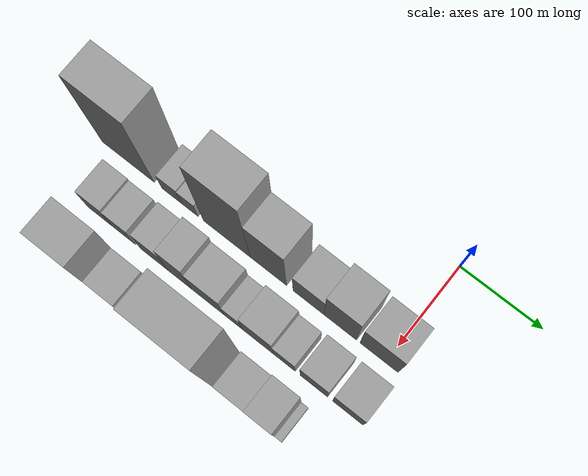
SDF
<sdf version="1.6">
 <world name="default">
  <model name="building_9">
   <static>1</static>
   <pose>100.0000 -323.2241 0 0.000000 0.000000 0.000000</pose>
   <link name="link">
    <pose>0 0 88.50 0 0 0</pose>
    <collision name="collision"><geometry><box><size>40.0000 67.9188 177.0000</size></box></geometry></collision>
    <visual name="visual">
     <cast_shadows>0</cast_shadows>
     <geometry><box><size>40.0000 67.9188 177.0000</size></box></geometry>
     <material>
      <script>
       <uri>model://grey_wall/materials/scripts</uri>
       <uri>model://grey_wall/materials/textures</uri>
       <name>vrc/grey_wall</name>
      </script>
     </material>
    </visual>
   </link>
  </model>
  <model name="building_10">
   <static>1</static>
   <pose>100.0000 -266.8234 0 0.000000 0.000000 0.000000</pose>
   <link name="link">
    <pose>0 0 22.50 0 0 0</pose>
    <collision name="collision"><geometry><box><size>40.0000 24.8826 45.0000</size></box></geometry></collision>
    <visual name="visual">
     <cast_shadows>0</cast_shadows>
     <geometry><box><size>40.0000 24.8826 45.0000</size></box></geometry>
     <material>
      <script>
       <uri>model://grey_wall/materials/scripts</uri>
       <uri>model://grey_wall/materials/textures</uri>
       <name>vrc/grey_wall</name>
      </script>
     </material>
    </visual>
   </link>
  </model>
  <model name="building_11">
   <static>1</static>
   <pose>100.0000 -243.5627 0 0.000000 0.000000 0.000000</pose>
   <link name="link">
    <pose>0 0 21.00 0 0 0</pose>
    <collision name="collision"><geometry><box><size>40.0000 21.6390 42.0000</size></box></geometry></collision>
    <visual name="visual">
     <cast_shadows>0</cast_shadows>
     <geometry><box><size>40.0000 21.6390 42.0000</size></box></geometry>
     <material>
      <script>
       <uri>model://grey_wall/materials/scripts</uri>
       <uri>model://grey_wall/materials/textures</uri>
       <name>vrc/grey_wall</name>
      </script>
     </material>
    </visual>
   </link>
  </model>
  <model name="building_12">
   <static>1</static>
   <pose>100.0000 -196.0559 0 0.000000 0.000000 0.000000</pose>
   <link name="link">
    <pose>0 0 93.00 0 0 0</pose>
    <collision name="collision"><geometry><box><size>40.0000 59.3746 186.0000</size></box></geometry></collision>
    <visual name="visual">
     <cast_shadows>0</cast_shadows>
     <geometry><box><size>40.0000 59.3746 186.0000</size></box></geometry>
     <material>
      <script>
       <uri>model://grey_wall/materials/scripts</uri>
       <uri>model://grey_wall/materials/textures</uri>
       <name>vrc/grey_wall</name>
      </script>
     </material>
    </visual>
   </link>
  </model>
  <model name="building_13">
   <static>1</static>
   <pose>100.0000 -143.6979 0 0.000000 0.000000 0.000000</pose>
   <link name="link">
    <pose>0 0 64.50 0 0 0</pose>
    <collision name="collision"><geometry><box><size>40.0000 45.3413 129.0000</size></box></geometry></collision>
    <visual name="visual">
     <cast_shadows>0</cast_shadows>
     <geometry><box><size>40.0000 45.3413 129.0000</size></box></geometry>
     <material>
      <script>
       <uri>model://grey_wall/materials/scripts</uri>
       <uri>model://grey_wall/materials/textures</uri>
       <name>vrc/grey_wall</name>
      </script>
     </material>
    </visual>
   </link>
  </model>
  <model name="building_14">
   <static>1</static>
   <pose>100.0000 -93.7879 0 0.000000 0.000000 0.000000</pose>
   <link name="link">
    <pose>0 0 34.50 0 0 0</pose>
    <collision name="collision"><geometry><box><size>40.0000 38.4788 69.0000</size></box></geometry></collision>
    <visual name="visual">
     <cast_shadows>0</cast_shadows>
     <geometry><box><size>40.0000 38.4788 69.0000</size></box></geometry>
     <material>
      <script>
       <uri>model://grey_wall/materials/scripts</uri>
       <uri>model://grey_wall/materials/textures</uri>
       <name>vrc/grey_wall</name>
      </script>
     </material>
    </visual>
   </link>
  </model>
  <model name="building_15">
   <static>1</static>
   <pose>100.0000 -54.8246 0 0.000000 0.000000 0.000000</pose>
   <link name="link">
    <pose>0 0 51.00 0 0 0</pose>
    <collision name="collision"><geometry><box><size>40.0000 39.4477 102.0000</size></box></geometry></collision>
    <visual name="visual">
     <cast_shadows>0</cast_shadows>
     <geometry><box><size>40.0000 39.4477 102.0000</size></box></geometry>
     <material>
      <script>
       <uri>model://grey_wall/materials/scripts</uri>
       <uri>model://grey_wall/materials/textures</uri>
       <name>vrc/grey_wall</name>
      </script>
     </material>
    </visual>
   </link>
  </model>
  <model name="building_16">
   <static>1</static>
   <pose>100.0000 -8.0166 0 0.000000 0.000000 0.000000</pose>
   <link name="link">
    <pose>0 0 43.50 0 0 0</pose>
    <collision name="collision"><geometry><box><size>40.0000 46.1682 87.0000</size></box></geometry></collision>
    <visual name="visual">
     <cast_shadows>0</cast_shadows>
     <geometry><box><size>40.0000 46.1682 87.0000</size></box></geometry>
     <material>
      <script>
       <uri>model://grey_wall/materials/scripts</uri>
       <uri>model://grey_wall/materials/textures</uri>
       <name>vrc/grey_wall</name>
      </script>
     </material>
    </visual>
   </link>
  </model>
  <model name="building_44">
   <static>1</static>
   <pose>160.0000 -308.6225 0 0.000000 0.000000 0.000000</pose>
   <link name="link">
    <pose>0 0 30.00 0 0 0</pose>
    <collision name="collision"><geometry><box><size>40.0000 30.7090 60.0000</size></box></geometry></collision>
    <visual name="visual">
     <cast_shadows>0</cast_shadows>
     <geometry><box><size>40.0000 30.7090 60.0000</size></box></geometry>
     <material>
      <script>
       <uri>model://grey_wall/materials/scripts</uri>
       <uri>model://grey_wall/materials/textures</uri>
       <name>vrc/grey_wall</name>
      </script>
     </material>
    </visual>
   </link>
  </model>
  <model name="building_45">
   <static>1</static>
   <pose>160.0000 -278.1065 0 0.000000 0.000000 0.000000</pose>
   <link name="link">
    <pose>0 0 27.00 0 0 0</pose>
    <collision name="collision"><geometry><box><size>40.0000 30.3230 54.0000</size></box></geometry></collision>
    <visual name="visual">
     <cast_shadows>0</cast_shadows>
     <geometry><box><size>40.0000 30.3230 54.0000</size></box></geometry>
     <material>
      <script>
       <uri>model://grey_wall/materials/scripts</uri>
       <uri>model://grey_wall/materials/textures</uri>
       <name>vrc/grey_wall</name>
      </script>
     </material>
    </visual>
   </link>
  </model>
  <model name="building_46">
   <static>1</static>
   <pose>160.0000 -238.6514 0 0.000000 0.000000 0.000000</pose>
   <link name="link">
    <pose>0 0 31.50 0 0 0</pose>
    <collision name="collision"><geometry><box><size>40.0000 34.5871 63.0000</size></box></geometry></collision>
    <visual name="visual">
     <cast_shadows>0</cast_shadows>
     <geometry><box><size>40.0000 34.5871 63.0000</size></box></geometry>
     <material>
      <script>
       <uri>model://grey_wall/materials/scripts</uri>
       <uri>model://grey_wall/materials/textures</uri>
       <name>vrc/grey_wall</name>
      </script>
     </material>
    </visual>
   </link>
  </model>
  <model name="building_47">
   <static>1</static>
   <pose>160.0000 -206.0805 0 0.000000 0.000000 0.000000</pose>
   <link name="link">
    <pose>0 0 46.50 0 0 0</pose>
    <collision name="collision"><geometry><box><size>40.0000 30.5546 93.0000</size></box></geometry></collision>
    <visual name="visual">
     <cast_shadows>0</cast_shadows>
     <geometry><box><size>40.0000 30.5546 93.0000</size></box></geometry>
     <material>
      <script>
       <uri>model://grey_wall/materials/scripts</uri>
       <uri>model://grey_wall/materials/textures</uri>
       <name>vrc/grey_wall</name>
      </script>
     </material>
    </visual>
   </link>
  </model>
  <model name="building_48">
   <static>1</static>
   <pose>160.0000 -170.4511 0 0.000000 0.000000 0.000000</pose>
   <link name="link">
    <pose>0 0 37.50 0 0 0</pose>
    <collision name="collision"><geometry><box><size>40.0000 40.7042 75.0000</size></box></geometry></collision>
    <visual name="visual">
     <cast_shadows>0</cast_shadows>
     <geometry><box><size>40.0000 40.7042 75.0000</size></box></geometry>
     <material>
      <script>
       <uri>model://grey_wall/materials/scripts</uri>
       <uri>model://grey_wall/materials/textures</uri>
       <name>vrc/grey_wall</name>
      </script>
     </material>
    </visual>
   </link>
  </model>
  <model name="building_49">
   <static>1</static>
   <pose>160.0000 -138.7853 0 0.000000 0.000000 0.000000</pose>
   <link name="link">
    <pose>0 0 22.50 0 0 0</pose>
    <collision name="collision"><geometry><box><size>40.0000 22.6274 45.0000</size></box></geometry></collision>
    <visual name="visual">
     <cast_shadows>0</cast_shadows>
     <geometry><box><size>40.0000 22.6274 45.0000</size></box></geometry>
     <material>
      <script>
       <uri>model://grey_wall/materials/scripts</uri>
       <uri>model://grey_wall/materials/textures</uri>
       <name>vrc/grey_wall</name>
      </script>
     </material>
    </visual>
   </link>
  </model>
  <model name="building_50">
   <static>1</static>
   <pose>160.0000 -108.3952 0 0.000000 0.000000 0.000000</pose>
   <link name="link">
    <pose>0 0 36.00 0 0 0</pose>
    <collision name="collision"><geometry><box><size>40.0000 38.1530 72.0000</size></box></geometry></collision>
    <visual name="visual">
     <cast_shadows>0</cast_shadows>
     <geometry><box><size>40.0000 38.1530 72.0000</size></box></geometry>
     <material>
      <script>
       <uri>model://grey_wall/materials/scripts</uri>
       <uri>model://grey_wall/materials/textures</uri>
       <name>vrc/grey_wall</name>
      </script>
     </material>
    </visual>
   </link>
  </model>
  <model name="building_51">
   <static>1</static>
   <pose>160.0000 -76.0329 0 0.000000 0.000000 0.000000</pose>
   <link name="link">
    <pose>0 0 25.50 0 0 0</pose>
    <collision name="collision"><geometry><box><size>40.0000 26.5715 51.0000</size></box></geometry></collision>
    <visual name="visual">
     <cast_shadows>0</cast_shadows>
     <geometry><box><size>40.0000 26.5715 51.0000</size></box></geometry>
     <material>
      <script>
       <uri>model://grey_wall/materials/scripts</uri>
       <uri>model://grey_wall/materials/textures</uri>
       <name>vrc/grey_wall</name>
      </script>
     </material>
    </visual>
   </link>
  </model>
  <model name="building_52">
   <static>1</static>
   <pose>160.0000 -40.1293 0 0.000000 0.000000 0.000000</pose>
   <link name="link">
    <pose>0 0 33.00 0 0 0</pose>
    <collision name="collision"><geometry><box><size>40.0000 33.2358 66.0000</size></box></geometry></collision>
    <visual name="visual">
     <cast_shadows>0</cast_shadows>
     <geometry><box><size>40.0000 33.2358 66.0000</size></box></geometry>
     <material>
      <script>
       <uri>model://grey_wall/materials/scripts</uri>
       <uri>model://grey_wall/materials/textures</uri>
       <name>vrc/grey_wall</name>
      </script>
     </material>
    </visual>
   </link>
  </model>
  <model name="building_53">
   <static>1</static>
   <pose>160.0000 0.6464 0 0.000000 0.000000 0.000000</pose>
   <link name="link">
    <pose>0 0 33.00 0 0 0</pose>
    <collision name="collision"><geometry><box><size>40.0000 36.3156 66.0000</size></box></geometry></collision>
    <visual name="visual">
     <cast_shadows>0</cast_shadows>
     <geometry><box><size>40.0000 36.3156 66.0000</size></box></geometry>
     <material>
      <script>
       <uri>model://grey_wall/materials/scripts</uri>
       <uri>model://grey_wall/materials/textures</uri>
       <name>vrc/grey_wall</name>
      </script>
     </material>
    </visual>
   </link>
  </model>
  <model name="building_78">
   <static>1</static>
   <pose>220.0000 -285.2279 0 0.000000 0.000000 0.000000</pose>
   <link name="link">
    <pose>0 0 67.50 0 0 0</pose>
    <collision name="collision"><geometry><box><size>40.0000 48.6684 135.0000</size></box></geometry></collision>
    <visual name="visual">
     <cast_shadows>0</cast_shadows>
     <geometry><box><size>40.0000 48.6684 135.0000</size></box></geometry>
     <material>
      <script>
       <uri>model://grey_wall/materials/scripts</uri>
       <uri>model://grey_wall/materials/textures</uri>
       <name>vrc/grey_wall</name>
      </script>
     </material>
    </visual>
   </link>
  </model>
  <model name="building_79">
   <static>1</static>
   <pose>220.0000 -242.8008 0 0.000000 0.000000 0.000000</pose>
   <link name="link">
    <pose>0 0 33.00 0 0 0</pose>
    <collision name="collision"><geometry><box><size>40.0000 36.1858 66.0000</size></box></geometry></collision>
    <visual name="visual">
     <cast_shadows>0</cast_shadows>
     <geometry><box><size>40.0000 36.1858 66.0000</size></box></geometry>
     <material>
      <script>
       <uri>model://grey_wall/materials/scripts</uri>
       <uri>model://grey_wall/materials/textures</uri>
       <name>vrc/grey_wall</name>
      </script>
     </material>
    </visual>
   </link>
  </model>
  <model name="building_80">
   <static>1</static>
   <pose>220.0000 -209.1094 0 0.000000 0.000000 0.000000</pose>
   <link name="link">
    <pose>0 0 30.00 0 0 0</pose>
    <collision name="collision"><geometry><box><size>40.0000 31.1971 60.0000</size></box></geometry></collision>
    <visual name="visual">
     <cast_shadows>0</cast_shadows>
     <geometry><box><size>40.0000 31.1971 60.0000</size></box></geometry>
     <material>
      <script>
       <uri>model://grey_wall/materials/scripts</uri>
       <uri>model://grey_wall/materials/textures</uri>
       <name>vrc/grey_wall</name>
      </script>
     </material>
    </visual>
   </link>
  </model>
  <model name="building_81">
   <static>1</static>
   <pose>220.0000 -150.0497 0 0.000000 0.000000 0.000000</pose>
   <link name="link">
    <pose>0 0 103.50 0 0 0</pose>
    <collision name="collision"><geometry><box><size>40.0000 74.9223 207.0000</size></box></geometry></collision>
    <visual name="visual">
     <cast_shadows>0</cast_shadows>
     <geometry><box><size>40.0000 74.9223 207.0000</size></box></geometry>
     <material>
      <script>
       <uri>model://grey_wall/materials/scripts</uri>
       <uri>model://grey_wall/materials/textures</uri>
       <name>vrc/grey_wall</name>
      </script>
     </material>
    </visual>
   </link>
  </model>
  <model name="building_82">
   <static>1</static>
   <pose>220.0000 -89.2965 0 0.000000 0.000000 0.000000</pose>
   <link name="link">
    <pose>0 0 36.00 0 0 0</pose>
    <collision name="collision"><geometry><box><size>40.0000 36.5842 72.0000</size></box></geometry></collision>
    <visual name="visual">
     <cast_shadows>0</cast_shadows>
     <geometry><box><size>40.0000 36.5842 72.0000</size></box></geometry>
     <material>
      <script>
       <uri>model://grey_wall/materials/scripts</uri>
       <uri>model://grey_wall/materials/textures</uri>
       <name>vrc/grey_wall</name>
      </script>
     </material>
    </visual>
   </link>
  </model>
  <model name="building_83">
   <static>1</static>
   <pose>220.0000 -55.2961 0 0.000000 0.000000 0.000000</pose>
   <link name="link">
    <pose>0 0 48.00 0 0 0</pose>
    <collision name="collision"><geometry><box><size>40.0000 31.4167 96.0000</size></box></geometry></collision>
    <visual name="visual">
     <cast_shadows>0</cast_shadows>
     <geometry><box><size>40.0000 31.4167 96.0000</size></box></geometry>
     <material>
      <script>
       <uri>model://grey_wall/materials/scripts</uri>
       <uri>model://grey_wall/materials/textures</uri>
       <name>vrc/grey_wall</name>
      </script>
     </material>
    </visual>
   </link>
  </model>
  <model name="building_84">
   <static>1</static>
   <pose>220.0000 -35.3395 0 0.000000 0.000000 0.000000</pose>
   <link name="link">
    <pose>0 0 10.50 0 0 0</pose>
    <collision name="collision"><geometry><box><size>40.0000 8.4965 21.0000</size></box></geometry></collision>
    <visual name="visual">
     <cast_shadows>0</cast_shadows>
     <geometry><box><size>40.0000 8.4965 21.0000</size></box></geometry>
     <material>
      <script>
       <uri>model://grey_wall/materials/scripts</uri>
       <uri>model://grey_wall/materials/textures</uri>
       <name>vrc/grey_wall</name>
      </script>
     </material>
    </visual>
   </link>
  </model>
 </world>
</sdf>
